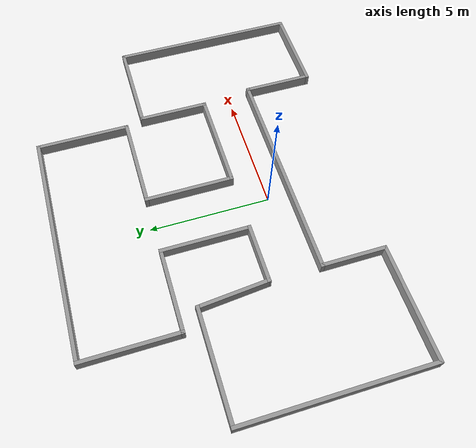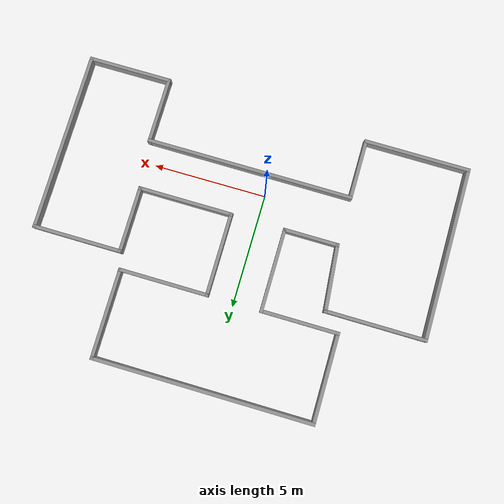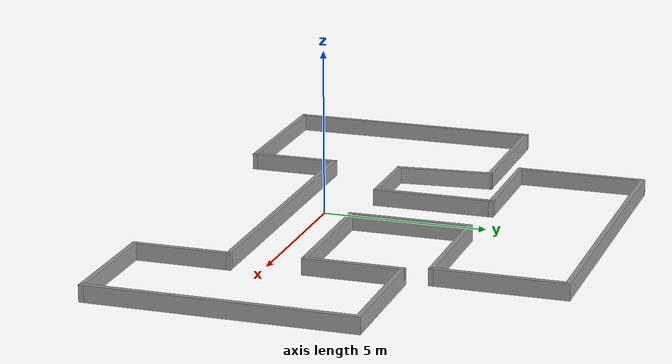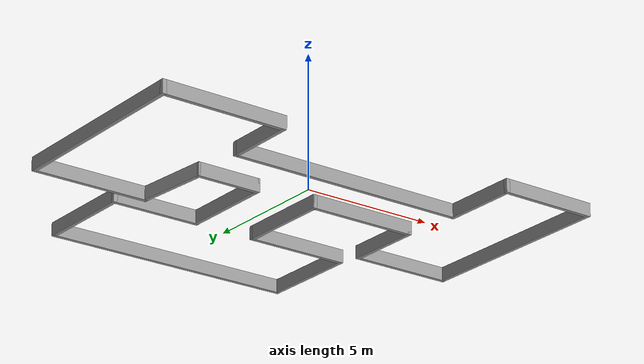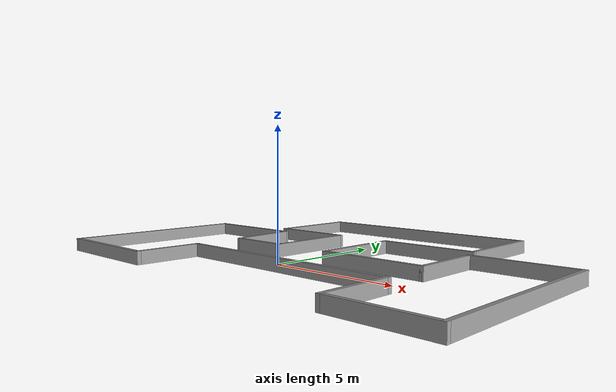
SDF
<?xml version='1.0'?>
<sdf version='1.6'>
  <model name='test_map'>
    <pose frame=''>0.461 2.457 0 0 -0 0</pose>
    <link name='Wall_11'>
      <collision name='Wall_11_Collision'>
        <geometry>
          <box>
            <size>2.5 0.15 0.5</size>
          </box>
        </geometry>
        <pose frame=''>0 0 0.25 0 -0 0</pose>
      </collision>
      <visual name='Wall_11_Visual'>
        <pose frame=''>0 0 0.25 0 -0 0</pose>
        <geometry>
          <box>
            <size>2.5 0.15 0.5</size>
          </box>
        </geometry>
        <material>
          <script>
            <uri>file://media/materials/scripts/gazebo.material</uri>
            <name>Gazebo/Grey</name>
          </script>
          <ambient>1 1 1 1</ambient>
        </material>
        <meta>
          <layer>0</layer>
        </meta>
      </visual>
      <pose frame=''>-2.875 -1.225 0 0 -0 0</pose>
    </link>
    <link name='Wall_12'>
      <collision name='Wall_12_Collision'>
        <geometry>
          <box>
            <size>3.75 0.15 0.5</size>
          </box>
        </geometry>
        <pose frame=''>0 0 0.25 0 -0 0</pose>
      </collision>
      <visual name='Wall_12_Visual'>
        <pose frame=''>0 0 0.25 0 -0 0</pose>
        <geometry>
          <box>
            <size>3.75 0.15 0.5</size>
          </box>
        </geometry>
        <material>
          <script>
            <uri>file://media/materials/scripts/gazebo.material</uri>
            <name>Gazebo/Grey</name>
          </script>
          <ambient>1 1 1 1</ambient>
        </material>
        <meta>
          <layer>0</layer>
        </meta>
      </visual>
      <pose frame=''>-1.7 0.575 0 0 -0 1.5708</pose>
    </link>
    <link name='Wall_13'>
      <collision name='Wall_13_Collision'>
        <geometry>
          <box>
            <size>3.5 0.15 0.5</size>
          </box>
        </geometry>
        <pose frame=''>0 0 0.25 0 -0 0</pose>
      </collision>
      <visual name='Wall_13_Visual'>
        <pose frame=''>0 0 0.25 0 -0 0</pose>
        <geometry>
          <box>
            <size>3.5 0.15 0.5</size>
          </box>
        </geometry>
        <material>
          <script>
            <uri>file://media/materials/scripts/gazebo.material</uri>
            <name>Gazebo/Grey</name>
          </script>
          <ambient>1 1 1 1</ambient>
        </material>
        <meta>
          <layer>0</layer>
        </meta>
      </visual>
      <pose frame=''>-3.375 2.375 0 0 -0 3.14159</pose>
    </link>
    <link name='Wall_14'>
      <collision name='Wall_14_Collision'>
        <geometry>
          <box>
            <size>4 0.15 0.5</size>
          </box>
        </geometry>
        <pose frame=''>0 0 0.25 0 -0 0</pose>
      </collision>
      <visual name='Wall_14_Visual'>
        <pose frame=''>0 0 0.25 0 -0 0</pose>
        <geometry>
          <box>
            <size>4 0.15 0.5</size>
          </box>
        </geometry>
        <material>
          <script>
            <uri>file://media/materials/scripts/gazebo.material</uri>
            <name>Gazebo/Grey</name>
          </script>
          <ambient>1 1 1 1</ambient>
        </material>
        <meta>
          <layer>0</layer>
        </meta>
      </visual>
      <pose frame=''>-5.05 4.3 0 0 -0 1.5708</pose>
    </link>
    <link name='Wall_15'>
      <collision name='Wall_15_Collision'>
        <geometry>
          <box>
            <size>9.75 0.15 0.5</size>
          </box>
        </geometry>
        <pose frame=''>0 0 0.25 0 -0 0</pose>
      </collision>
      <visual name='Wall_15_Visual'>
        <pose frame=''>0 0 0.25 0 -0 0</pose>
        <geometry>
          <box>
            <size>9.75 0.15 0.5</size>
          </box>
        </geometry>
        <material>
          <script>
            <uri>file://media/materials/scripts/gazebo.material</uri>
            <name>Gazebo/Grey</name>
          </script>
          <ambient>1 1 1 1</ambient>
        </material>
        <meta>
          <layer>0</layer>
        </meta>
      </visual>
      <pose frame=''>-0.25 6.225 0 0 -0 0</pose>
    </link>
    <link name='Wall_16'>
      <collision name='Wall_16_Collision'>
        <geometry>
          <box>
            <size>4 0.15 0.5</size>
          </box>
        </geometry>
        <pose frame=''>0 0 0.25 0 -0 0</pose>
      </collision>
      <visual name='Wall_16_Visual'>
        <pose frame=''>0 0 0.25 0 -0 0</pose>
        <geometry>
          <box>
            <size>4 0.15 0.5</size>
          </box>
        </geometry>
        <material>
          <script>
            <uri>file://media/materials/scripts/gazebo.material</uri>
            <name>Gazebo/Grey</name>
          </script>
          <ambient>1 1 1 1</ambient>
        </material>
        <meta>
          <layer>0</layer>
        </meta>
      </visual>
      <pose frame=''>4.55 4.3 0 0 -0 -1.5708</pose>
    </link>
    <link name='Wall_17'>
      <collision name='Wall_17_Collision'>
        <geometry>
          <box>
            <size>4 0.15 0.5</size>
          </box>
        </geometry>
        <pose frame=''>0 0 0.25 0 -0 0</pose>
      </collision>
      <visual name='Wall_17_Visual'>
        <pose frame=''>0 0 0.25 0 -0 0</pose>
        <geometry>
          <box>
            <size>4 0.15 0.5</size>
          </box>
        </geometry>
        <material>
          <script>
            <uri>file://media/materials/scripts/gazebo.material</uri>
            <name>Gazebo/Grey</name>
          </script>
          <ambient>1 1 1 1</ambient>
        </material>
        <meta>
          <layer>0</layer>
        </meta>
      </visual>
      <pose frame=''>2.625 2.375 0 0 -0 3.14159</pose>
    </link>
    <link name='Wall_18'>
      <collision name='Wall_18_Collision'>
        <geometry>
          <box>
            <size>3.75 0.15 0.5</size>
          </box>
        </geometry>
        <pose frame=''>0 0 0.25 0 -0 0</pose>
      </collision>
      <visual name='Wall_18_Visual'>
        <pose frame=''>0 0 0.25 0 -0 0</pose>
        <geometry>
          <box>
            <size>3.75 0.15 0.5</size>
          </box>
        </geometry>
        <material>
          <script>
            <uri>file://media/materials/scripts/gazebo.material</uri>
            <name>Gazebo/Grey</name>
          </script>
          <ambient>1 1 1 1</ambient>
        </material>
        <meta>
          <layer>0</layer>
        </meta>
      </visual>
      <pose frame=''>0.7 0.575 0 0 -0 -1.5708</pose>
    </link>
    <link name='Wall_19'>
      <collision name='Wall_19_Collision'>
        <geometry>
          <box>
            <size>4.25 0.15 0.5</size>
          </box>
        </geometry>
        <pose frame=''>0 0 0.25 0 -0 0</pose>
      </collision>
      <visual name='Wall_19_Visual'>
        <pose frame=''>0 0 0.25 0 -0 0</pose>
        <geometry>
          <box>
            <size>4.25 0.15 0.5</size>
          </box>
        </geometry>
        <material>
          <script>
            <uri>file://media/materials/scripts/gazebo.material</uri>
            <name>Gazebo/Grey</name>
          </script>
          <ambient>1 1 1 1</ambient>
        </material>
        <meta>
          <layer>0</layer>
        </meta>
      </visual>
      <pose frame=''>2.75 -1.225 0 0 -0 0</pose>
    </link>
    <link name='Wall_20'>
      <collision name='Wall_20_Collision'>
        <geometry>
          <box>
            <size>3 0.15 0.5</size>
          </box>
        </geometry>
        <pose frame=''>0 0 0.25 0 -0 0</pose>
      </collision>
      <visual name='Wall_20_Visual'>
        <pose frame=''>0 0 0.25 0 -0 0</pose>
        <geometry>
          <box>
            <size>3 0.15 0.5</size>
          </box>
        </geometry>
        <material>
          <script>
            <uri>file://media/materials/scripts/gazebo.material</uri>
            <name>Gazebo/Grey</name>
          </script>
          <ambient>1 1 1 1</ambient>
        </material>
        <meta>
          <layer>0</layer>
        </meta>
      </visual>
      <pose frame=''>4.8 0.2 0 0 -0 1.5708</pose>
    </link>
    <link name='Wall_21'>
      <collision name='Wall_21_Collision'>
        <geometry>
          <box>
            <size>4 0.15 0.5</size>
          </box>
        </geometry>
        <pose frame=''>0 0 0.25 0 -0 0</pose>
      </collision>
      <visual name='Wall_21_Visual'>
        <pose frame=''>0 0 0.25 0 -0 0</pose>
        <geometry>
          <box>
            <size>4 0.15 0.5</size>
          </box>
        </geometry>
        <material>
          <script>
            <uri>file://media/materials/scripts/gazebo.material</uri>
            <name>Gazebo/Grey</name>
          </script>
          <ambient>1 1 1 1</ambient>
        </material>
        <meta>
          <layer>0</layer>
        </meta>
      </visual>
      <pose frame=''>6.725 1.625 0 0 -0 0</pose>
    </link>
    <link name='Wall_22'>
      <collision name='Wall_22_Collision'>
        <geometry>
          <box>
            <size>8 0.15 0.5</size>
          </box>
        </geometry>
        <pose frame=''>0 0 0.25 0 -0 0</pose>
      </collision>
      <visual name='Wall_22_Visual'>
        <pose frame=''>0 0 0.25 0 -0 0</pose>
        <geometry>
          <box>
            <size>8 0.15 0.5</size>
          </box>
        </geometry>
        <material>
          <script>
            <uri>file://media/materials/scripts/gazebo.material</uri>
            <name>Gazebo/Grey</name>
          </script>
          <ambient>1 1 1 1</ambient>
        </material>
        <meta>
          <layer>0</layer>
        </meta>
      </visual>
      <pose frame=''>8.65 -2.3 0 0 -0 -1.5708</pose>
    </link>
    <link name='Wall_23'>
      <collision name='Wall_23_Collision'>
        <geometry>
          <box>
            <size>3.75 0.15 0.5</size>
          </box>
        </geometry>
        <pose frame=''>0 0 0.25 0 -0 0</pose>
      </collision>
      <visual name='Wall_23_Visual'>
        <pose frame=''>0 0 0.25 0 -0 0</pose>
        <geometry>
          <box>
            <size>3.75 0.15 0.5</size>
          </box>
        </geometry>
        <material>
          <script>
            <uri>file://media/materials/scripts/gazebo.material</uri>
            <name>Gazebo/Grey</name>
          </script>
          <ambient>1 1 1 1</ambient>
        </material>
        <meta>
          <layer>0</layer>
        </meta>
      </visual>
      <pose frame=''>6.85 -6.225 0 0 -0 3.14159</pose>
    </link>
    <link name='Wall_24'>
      <collision name='Wall_24_Collision'>
        <geometry>
          <box>
            <size>3 0.15 0.5</size>
          </box>
        </geometry>
        <pose frame=''>0 0 0.25 0 -0 0</pose>
      </collision>
      <visual name='Wall_24_Visual'>
        <pose frame=''>0 0 0.25 0 -0 0</pose>
        <geometry>
          <box>
            <size>3 0.15 0.5</size>
          </box>
        </geometry>
        <material>
          <script>
            <uri>file://media/materials/scripts/gazebo.material</uri>
            <name>Gazebo/Grey</name>
          </script>
          <ambient>1 1 1 1</ambient>
        </material>
        <meta>
          <layer>0</layer>
        </meta>
      </visual>
      <pose frame=''>5.05 -4.8 0 0 -0 1.5708</pose>
    </link>
    <link name='Wall_25'>
      <collision name='Wall_25_Collision'>
        <geometry>
          <box>
            <size>9.25 0.15 0.5</size>
          </box>
        </geometry>
        <pose frame=''>0 0 0.25 0 -0 0</pose>
      </collision>
      <visual name='Wall_25_Visual'>
        <pose frame=''>0 0 0.25 0 -0 0</pose>
        <geometry>
          <box>
            <size>9.25 0.15 0.5</size>
          </box>
        </geometry>
        <material>
          <script>
            <uri>file://media/materials/scripts/gazebo.material</uri>
            <name>Gazebo/Grey</name>
          </script>
          <ambient>1 1 1 1</ambient>
        </material>
        <meta>
          <layer>0</layer>
        </meta>
      </visual>
      <pose frame=''>0.5 -3.375 0 0 -0 3.14159</pose>
    </link>
    <link name='Wall_26'>
      <collision name='Wall_26_Collision'>
        <geometry>
          <box>
            <size>2.75 0.15 0.5</size>
          </box>
        </geometry>
        <pose frame=''>0 0 0.25 0 -0 0</pose>
      </collision>
      <visual name='Wall_26_Visual'>
        <pose frame=''>0 0 0.25 0 -0 0</pose>
        <geometry>
          <box>
            <size>2.75 0.15 0.5</size>
          </box>
        </geometry>
        <material>
          <script>
            <uri>file://media/materials/scripts/gazebo.material</uri>
            <name>Gazebo/Grey</name>
          </script>
          <ambient>1 1 1 1</ambient>
        </material>
        <meta>
          <layer>0</layer>
        </meta>
      </visual>
      <pose frame=''>-4.05 -4.675 0 0 -0 -1.5708</pose>
    </link>
    <link name='Wall_27'>
      <collision name='Wall_27_Collision'>
        <geometry>
          <box>
            <size>4.75 0.15 0.5</size>
          </box>
        </geometry>
        <pose frame=''>0 0 0.25 0 -0 0</pose>
      </collision>
      <visual name='Wall_27_Visual'>
        <pose frame=''>0 0 0.25 0 -0 0</pose>
        <geometry>
          <box>
            <size>4.75 0.15 0.5</size>
          </box>
        </geometry>
        <material>
          <script>
            <uri>file://media/materials/scripts/gazebo.material</uri>
            <name>Gazebo/Grey</name>
          </script>
          <ambient>1 1 1 1</ambient>
        </material>
        <meta>
          <layer>0</layer>
        </meta>
      </visual>
      <pose frame=''>-6.35 -5.975 0 0 -0 3.14159</pose>
    </link>
    <link name='Wall_28'>
      <collision name='Wall_28_Collision'>
        <geometry>
          <box>
            <size>7.75 0.15 0.5</size>
          </box>
        </geometry>
        <pose frame=''>0 0 0.25 0 -0 0</pose>
      </collision>
      <visual name='Wall_28_Visual'>
        <pose frame=''>0 0 0.25 0 -0 0</pose>
        <geometry>
          <box>
            <size>7.75 0.15 0.5</size>
          </box>
        </geometry>
        <material>
          <script>
            <uri>file://media/materials/scripts/gazebo.material</uri>
            <name>Gazebo/Grey</name>
          </script>
          <ambient>1 1 1 1</ambient>
        </material>
        <meta>
          <layer>0</layer>
        </meta>
      </visual>
      <pose frame=''>-8.65 -2.175 0 0 -0 1.5708</pose>
    </link>
    <link name='Wall_29'>
      <collision name='Wall_29_Collision'>
        <geometry>
          <box>
            <size>4.5 0.15 0.5</size>
          </box>
        </geometry>
        <pose frame=''>0 0 0.25 0 -0 0</pose>
      </collision>
      <visual name='Wall_29_Visual'>
        <pose frame=''>0 0 0.25 0 -0 0</pose>
        <geometry>
          <box>
            <size>4.5 0.15 0.5</size>
          </box>
        </geometry>
        <material>
          <script>
            <uri>file://media/materials/scripts/gazebo.material</uri>
            <name>Gazebo/Grey</name>
          </script>
          <ambient>1 1 1 1</ambient>
        </material>
        <meta>
          <layer>0</layer>
        </meta>
      </visual>
      <pose frame=''>-6.475 1.625 0 0 -0 0</pose>
    </link>
    <link name='Wall_30'>
      <collision name='Wall_30_Collision'>
        <geometry>
          <box>
            <size>3.01094 0.15 0.5</size>
          </box>
        </geometry>
        <pose frame=''>0 0 0.25 0 -0 0</pose>
      </collision>
      <visual name='Wall_30_Visual'>
        <pose frame=''>0 0 0.25 0 -0 0</pose>
        <geometry>
          <box>
            <size>3.01094 0.15 0.5</size>
          </box>
        </geometry>
        <material>
          <script>
            <uri>file://media/materials/scripts/gazebo.material</uri>
            <name>Gazebo/Grey</name>
          </script>
          <ambient>1 1 1 1</ambient>
        </material>
        <meta>
          <layer>0</layer>
        </meta>
      </visual>
      <pose frame=''>-4.175 0.2 0 0 -0 -1.4833</pose>
    </link>
    <static>1</static>
  </model>
</sdf>
